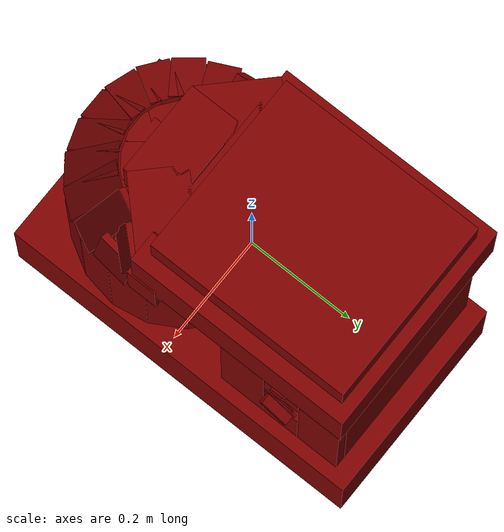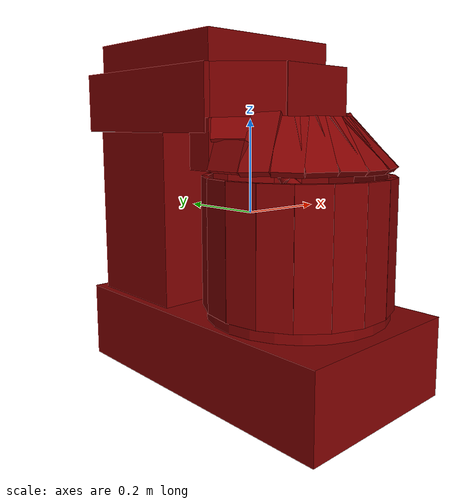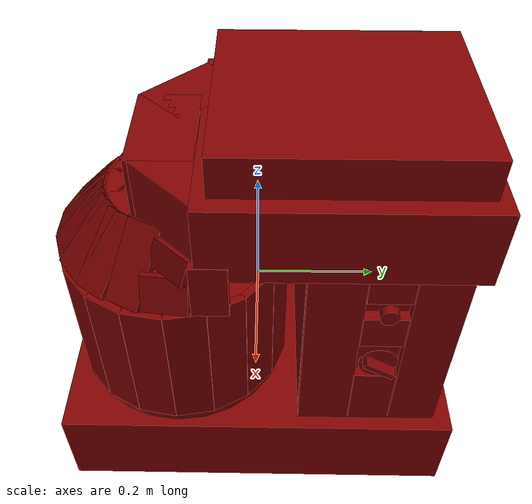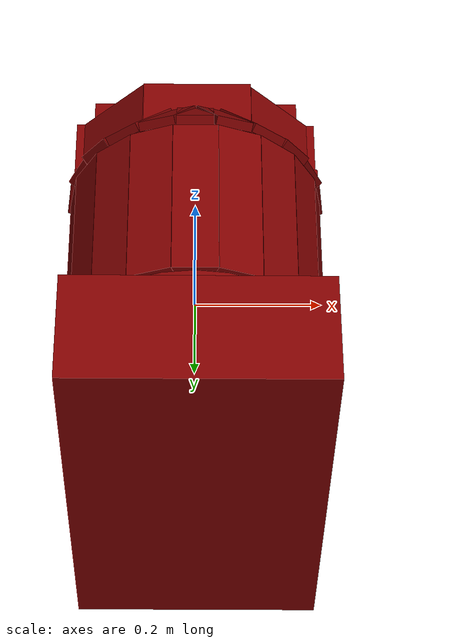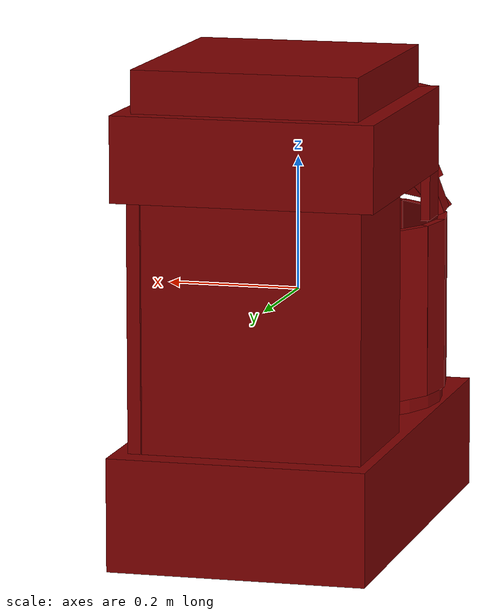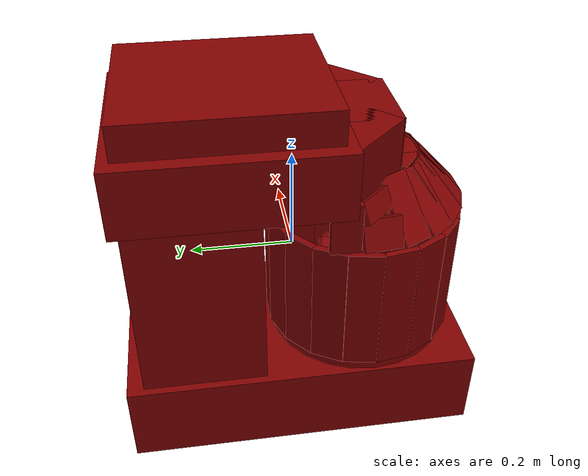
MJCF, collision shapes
<?xml version='1.0' encoding='UTF-8'?>
<mujoco model="model">
  <compiler angle="radian"/>
  <asset>
    <mesh file="visuals/Blender001.obj" name="Blender001_vis"/>
    <mesh file="visuals/Body001.obj" name="Body001_vis"/>
    <mesh file="visuals/Button001.obj" name="Button001_vis"/>
    <mesh file="visuals/Container001.obj" name="Container001_vis"/>
    <mesh file="visuals/Knob001.obj" name="Knob001_vis"/>
    <mesh file="visuals/Lid001.obj" name="Lid001_vis"/>
    <texture file="visuals/T_BC001.png" name="Body001_material" type="2d"/>
    <material name="Body001_material" rgba="1 1 1 1.0" texture="Body001_material" shininess="0.4472135901451111" specular="0.6"/>
    <texture file="visuals/T_BC001.png" name="Button001_material" type="2d"/>
    <material name="Button001_material" rgba="1 1 1 1.0" texture="Button001_material" shininess="0.4472135901451111" specular="0.3103448502657381"/>
    <texture file="visuals/T_BC001.png" name="Container001_material" type="2d"/>
    <material name="Container001_material" rgba="1 1 1 1.0" texture="Container001_material" shininess="0.4472135901451111" specular="0.8"/>
    <texture file="visuals/T_BC001.png" name="Knob001_material" type="2d"/>
    <material name="Knob001_material" rgba="1 1 1 1.0" texture="Knob001_material" shininess="0.4472135901451111" specular="0.3103448502657381"/>
    <texture file="visuals/T_BC001.png" name="Lid001_material" type="2d"/>
    <material name="Lid001_material" rgba="1 1 1 1.0" texture="Lid001_material" shininess="0.4472135901451111" specular="0.6"/>
    <texture file="visuals/T_BC001.png" name="Blender001_material" type="2d"/>
    <material name="Blender001_material" rgba="1 1 1 1.0" texture="Blender001_material" shininess="0.4472135901451111" specular="0.8"/>
  </asset>
  <default>
    <default class="visual">
      <geom conaffinity="0" contype="0" group="1" type="mesh"/>
    </default>
    <default class="collision">
      <geom group="0" rgba="0.5 0 0 0.5"/>
    </default>
    <default class="spawn">
      <geom group="0" rgba="1 1 1 0.5" contype="0" conaffinity="0"/>
      <site group="0" rgba="1 1 1 0.5"/>
    </default>
    <default class="region">
      <geom group="1" conaffinity="0" contype="0" rgba="0 1 0 0"/>
    </default>
  </default>
  <worldbody>
    <body>
      <body name="object">
        <geom mesh="Body001_vis" type="mesh" solimp="0.998 0.998 0.001" solref="0.001 1" density="100" friction="0.95 0.3 0.1" class="visual" material="Body001_material"/>
        <geom class="collision" type="box" pos="0.004799 0.000000 -0.281110" size="0.19251543283462524 0.34842848777770996 0.08424658328294754" quat="1.0 0.0 0.0 0.0"/>
        <geom class="collision" type="box" pos="-0.010589 0.194755 -0.011221" size="0.16297440230846405 0.12090107053518295 0.1839895248413086" quat="1.0 0.0 0.0 0.0"/>
        <geom class="collision" type="box" pos="0.163872 0.275314 -0.011221" size="0.009846153669059277 0.04034204035997391 0.1839895248413086" quat="1.0 0.0 0.0 0.0"/>
        <geom class="collision" type="box" pos="0.163872 0.118261 -0.011221" size="0.009846153669059277 0.04394160956144333 0.1839895248413086" quat="1.0 0.0 0.0 0.0"/>
        <geom class="collision" type="box" pos="0.163872 0.198493 -0.132679" size="0.009846153669059277 0.03491780906915665 0.06253164261579514" quat="1.0 0.0 0.0 0.0"/>
        <geom class="collision" type="box" pos="0.163872 0.198493 0.140944" size="0.009846153669059277 0.03491780906915665 0.03183937817811966" quat="1.0 0.0 0.0 0.0"/>
        <geom class="collision" type="box" pos="0.163872 0.198493 0.041338" size="0.009846153669059277 0.03491780906915665 0.03183937817811966" quat="1.0 0.0 0.0 0.0"/>
        <body name="Button001">
          <joint axis="-1.0 0.0 0.0" pos="0.178750 0.199048 0.090496" limited="true" name="Button001_joint" range="0.0 0.01" type="slide" damping="1" frictionloss="1" armature=".01" stiffness="0.05"/>
          <geom mesh="Button001_vis" type="mesh" solimp="0.998 0.998 0.001" solref="0.001 1" density="100" friction="0.95 0.3 0.1" class="visual" material="Button001_material"/>
          <geom class="collision" type="cylinder" pos="0.178808 0.199048 0.090520" size="0.014642302878201008 0.007393617648631334" quat="0.7071068286895752 -0.0 0.7071067690849304 0.0"/>
        </body>
        <body name="Container001">
          <joint axis="0.0 0.0 1.0" pos="-0.000101 -0.140191 -0.052839" limited="true" name="Container001_joint" range="0.0 0.1" type="slide" damping="1" frictionloss="1" armature=".01" stiffness="0.05"/>
          <geom mesh="Container001_vis" type="mesh" solimp="0.998 0.998 0.001" solref="0.001 1" density="100" friction="0.95 0.3 0.1" class="visual" material="Container001_material"/>
          <geom class="collision" type="cylinder" pos="-0.000101 -0.140191 -0.181641" size="0.18583239614963531 0.010407824069261551" quat="1.0 0.0 0.0 0.0"/>
          <geom class="collision" type="box" pos="0.181344 -0.172169 -0.039944" size="0.0061767445877194405 0.033245980739593506 0.12993557751178741" quat="0.9961947202682495 0.0 -0.0 -0.08715573698282242"/>
          <geom class="collision" type="box" pos="-0.181360 -0.108214 -0.039944" size="0.0061767445877194405 0.033245980739593506 0.12993557751178741" quat="0.9961947202682495 0.0 -0.0 -0.08715573698282242"/>
          <geom class="collision" type="box" pos="-0.000008 -0.324341 -0.039944" size="0.033245980739593506 0.006176746916025877 0.12993541359901428" quat="1.0 0.0 0.0 0.0"/>
          <geom class="collision" type="box" pos="-0.000008 0.043959 -0.039944" size="0.033245980739593506 0.006176746916025877 0.12993548810482025" quat="1.0 0.0 0.0 0.0"/>
          <geom class="collision" type="box" pos="-0.062991 0.032853 -0.039944" size="0.0061767445877194405 0.033245980739593506 0.12993557751178741" quat="0.8191520571708679 0.0 -0.0 -0.5735764503479004"/>
          <geom class="collision" type="box" pos="0.062975 -0.313236 -0.039944" size="0.0061767445877194405 0.033245980739593506 0.12993557751178741" quat="0.8191520571708679 0.0 -0.0 -0.5735764503479004"/>
          <geom class="collision" type="box" pos="0.118361 -0.281258 -0.039944" size="0.0061767445877194405 0.033245980739593506 0.12993557751178741" quat="0.9063077569007874 0.0 -0.0 -0.4226183593273163"/>
          <geom class="collision" type="box" pos="-0.118377 0.000876 -0.039944" size="0.0061767445877194405 0.033245980739593506 0.12993557751178741" quat="0.9063077569007874 0.0 -0.0 -0.4226183593273163"/>
          <geom class="collision" type="box" pos="-0.159487 -0.048116 -0.039944" size="0.0061767445877194405 0.033245980739593506 0.12993557751178741" quat="0.9659258127212524 0.0 -0.0 -0.2588190734386444"/>
          <geom class="collision" type="box" pos="0.159470 -0.232266 -0.039944" size="0.0061767445877194405 0.033245980739593506 0.12993557751178741" quat="0.9659258127212524 0.0 -0.0 -0.2588190734386444"/>
          <geom class="collision" type="box" pos="0.062975 0.032853 -0.039944" size="0.0061767445877194405 0.033245980739593506 0.12993557751178741" quat="0.8191519975662231 0.0 0.0 0.5735765099525452"/>
          <geom class="collision" type="box" pos="-0.062991 -0.313236 -0.039944" size="0.0061767445877194405 0.033245980739593506 0.12993557751178741" quat="0.8191519975662231 0.0 0.0 0.5735765099525452"/>
          <geom class="collision" type="box" pos="-0.118377 -0.281258 -0.039944" size="0.0061767445877194405 0.033245980739593506 0.12993557751178741" quat="0.9063078165054321 0.0 0.0 0.42261821031570435"/>
          <geom class="collision" type="box" pos="0.118361 0.000876 -0.039944" size="0.0061767445877194405 0.033245980739593506 0.12993557751178741" quat="0.9063078165054321 0.0 0.0 0.42261821031570435"/>
          <geom class="collision" type="box" pos="0.159471 -0.048116 -0.039944" size="0.0061767445877194405 0.033245980739593506 0.12993557751178741" quat="0.9659258127212524 0.0 0.0 0.2588190734386444"/>
          <geom class="collision" type="box" pos="-0.159487 -0.232266 -0.039944" size="0.0061767445877194405 0.033245980739593506 0.12993557751178741" quat="0.9659258127212524 0.0 0.0 0.2588190734386444"/>
          <geom class="collision" type="box" pos="-0.181360 -0.172169 -0.039944" size="0.0061767445877194405 0.033245984464883804 0.12993557751178741" quat="0.9961947202682495 0.0 0.0 0.08715561032295227"/>
          <geom class="collision" type="box" pos="0.181344 -0.108214 -0.039944" size="0.0061767445877194405 0.033245984464883804 0.12993557751178741" quat="0.9961947202682495 0.0 0.0 0.08715561032295227"/>
        </body>
        <body name="Knob001">
          <joint axis="-1.0 0.0 0.0" pos="0.187252 0.197473 -0.031054" limited="true" name="Knob001_joint" range="0.0 4.886921905584122" type="hinge" damping="0.05" armature="0.001"/>
          <geom mesh="Knob001_vis" type="mesh" solimp="0.998 0.998 0.001" solref="0.001 1" density="100" friction="0.95 0.3 0.1" class="visual" material="Knob001_material"/>
          <geom class="collision" type="cylinder" pos="0.174208 0.197845 -0.031054" size="0.03231373801827431 0.0012079408625140786" quat="0.7071068286895752 -0.0 0.7071067690849304 0.0"/>
          <geom class="collision" type="box" pos="0.184984 0.197845 -0.031054" size="0.009411806240677834 0.028818931430578232 0.005275980569422245" quat="0.9626153111457825 -0.27087217569351196 -6.014570523704953e-17 6.542199994625394e-25"/>
        </body>
        <body name="Lid001">
          <joint axis="-1.0 0.0 0.0" pos="0.000038 0.318746 0.174231" limited="true" name="Lid001_joint" range="0.0 1.5707963267948966" type="hinge" damping="1" frictionloss="1" armature=".01" stiffness="0.05"/>
          <geom mesh="Lid001_vis" type="mesh" solimp="0.998 0.998 0.001" solref="0.001 1" density="100" friction="0.95 0.3 0.1" class="visual" material="Lid001_material"/>
          <geom class="collision" type="box" pos="-0.000450 0.122571 0.237273" size="0.19431881606578827 0.2085888683795929 0.06351733207702637" quat="1.0 0.0 0.0 0.0"/>
          <geom class="collision" type="box" pos="0.002273 -0.137029 0.237273" size="0.08539991080760956 0.04922417923808098 0.06351733207702637" quat="1.0 0.0 0.0 0.0"/>
          <geom class="collision" type="box" pos="0.102061 -0.095968 0.237273" size="0.06879246234893799 0.04922395572066307 0.06351733207702637" quat="0.9238795042037964 0.0 0.0 0.3826834559440613"/>
          <geom class="collision" type="box" pos="-0.098259 -0.100314 0.237273" size="0.06904993206262589 0.04922395944595337 0.06351733207702637" quat="0.9238795042037964 0.0 -0.0 -0.3826834559440613"/>
          <geom class="collision" type="box" pos="-0.000054 0.122571 0.333284" size="0.16760961711406708 0.18835023045539856 0.03170707821846008" quat="1.0 0.0 0.0 0.0"/>
          <geom class="collision" type="box" pos="0.189411 -0.066592 0.152524" size="0.007024102378636599 0.027991430833935738 0.04819823428988457" quat="1.0 0.0 0.0 0.0"/>
          <geom class="collision" type="box" pos="0.179691 -0.132774 0.131982" size="0.007024114485830069 0.03573315963149071 0.02964690513908863" quat="0.9827542901039124 -0.005831500049680471 -0.1749138981103897 -0.059708282351493835"/>
          <geom class="collision" type="box" pos="-0.000671 -0.279305 0.151291" size="0.007024114485830069 0.027991430833935738 0.06515268236398697" quat="0.6562364101409912 -0.26335108280181885 -0.2633510231971741 -0.6562364101409912"/>
          <geom class="collision" type="box" pos="0.041949 -0.273040 0.152189" size="0.007024114485830069 0.027991430833935738 0.06515268236398697" quat="0.752773106098175 -0.20632094144821167 -0.30972301959991455 -0.5429880023002625"/>
          <geom class="collision" type="box" pos="0.083779 -0.253074 0.151999" size="0.007024114951491356 0.027991430833935738 0.06515268236398697" quat="0.8307384252548218 -0.17888695001602173 -0.32604533433914185 -0.4142071008682251"/>
          <geom class="collision" type="box" pos="0.115290 -0.223920 0.151627" size="0.007024114485830069 0.02799142710864544 0.06515268236398697" quat="0.8761871457099915 -0.10927364230155945 -0.35546261072158813 -0.3065970242023468"/>
          <geom class="collision" type="box" pos="0.143247 -0.179014 0.155723" size="0.007024114951491356 0.027991432696580887 0.06515268236398697" quat="0.9231134653091431 -0.09359268844127655 -0.3090006113052368 -0.2088554948568344"/>
          <geom class="collision" type="box" pos="0.162096 -0.121468 0.180093" size="0.007024114485830069 0.03573315590620041 0.0211629718542099" quat="0.911022961139679 -0.08539623022079468 -0.19718386232852936 -0.3519419729709625"/>
          <geom class="collision" type="box" pos="-0.162200 -0.121468 0.180093" size="0.007024114485830069 0.03573315963149071 0.0211629718542099" quat="0.911022961139679 -0.08539625257253647 0.19718389213085175 0.3519419729709625"/>
          <geom class="collision" type="box" pos="-0.083883 -0.253074 0.151999" size="0.007024114951491356 0.027991430833935738 0.06515268236398697" quat="0.8307384252548218 -0.17888695001602173 0.32604533433914185 0.4142071008682251"/>
          <geom class="collision" type="box" pos="-0.042053 -0.273040 0.152189" size="0.007024114951491356 0.027991430833935738 0.06515267491340637" quat="0.752773106098175 -0.20632094144821167 0.3097230792045593 0.5429880023002625"/>
          <geom class="collision" type="box" pos="-0.115393 -0.223920 0.151627" size="0.007024114485830069 0.02799142710864544 0.06515268236398697" quat="0.8761871457099915 -0.10927364975214005 0.35546255111694336 0.3065970838069916"/>
          <geom class="collision" type="box" pos="-0.143351 -0.179014 0.155723" size="0.007024114951491356 0.027991432696580887 0.06515267491340637" quat="0.9231135249137878 -0.0935925841331482 0.30900055170059204 0.2088552713394165"/>
          <geom class="collision" type="box" pos="-0.179794 -0.132774 0.131982" size="0.007024114485830069 0.03573315963149071 0.02964690513908863" quat="0.9827542901039124 -0.005831499584019184 0.1749138981103897 0.059708282351493835"/>
          <geom class="collision" type="box" pos="-0.185228 -0.066592 0.152524" size="0.007024104706943035 0.027991430833935738 0.04819826781749725" quat="1.0 0.0 0.0 0.0"/>
          <geom class="collision" type="box" pos="0.002273 -0.212335 0.196512" size="0.028944510966539383 0.023552678525447845 0.004796868190169334" quat="1.0 0.0 0.0 0.0"/>
          <geom class="collision" type="box" pos="-0.044352 -0.202184 0.196512" size="0.01881283149123192 0.030994737520813942 0.004796868190169334" quat="0.8969359993934631 0.0 0.0 0.44216036796569824"/>
          <geom class="collision" type="box" pos="0.050770 -0.200698 0.196512" size="0.01881283149123192 0.030994733795523643 0.004796868190169334" quat="0.8969359993934631 0.0 -0.0 -0.44216039776802063"/>
          <body name="Blender001">
            <joint axis="0.0 0.0 1.0" pos="0.000022 -0.126195 0.174892" limited="false" name="Blender001_joint" range="0 360" type="hinge" damping="1" frictionloss="1" armature=".01" stiffness="0.05"/>
            <geom mesh="Blender001_vis" type="mesh" solimp="0.998 0.998 0.001" solref="0.001 1" density="100" friction="0.95 0.3 0.1" class="visual" material="Blender001_material"/>
            <geom class="collision" type="cylinder" pos="0.000706 -0.126259 0.164391" size="0.0488768070936203 0.009077758528292179" quat="1.0 0.0 0.0 0.0"/>
            <geom class="collision" type="cylinder" pos="-0.029548 -0.150075 0.115700" size="0.008038324303925037 0.03987272456288338" quat="1.0 0.0 0.0 0.0"/>
            <geom class="collision" type="cylinder" pos="0.003375 -0.112040 0.135333" size="0.014936371706426144 0.03110305406153202" quat="0.9393659830093384 0.1000475212931633 0.3272119462490082 -0.02268061228096485"/>
            <geom class="collision" type="cylinder" pos="-0.026133 -0.123360 0.094369" size="0.014777264557778835 0.030771734192967415" quat="0.7805690765380859 -0.282722145318985 0.31547272205352783 0.45962709188461304"/>
            <geom class="collision" type="cylinder" pos="-0.022151 -0.161278 0.060764" size="0.014777264557778835 0.030771734192967415" quat="0.6745424866676331 -0.43157464265823364 -0.039401449263095856 0.5976481437683105"/>
            <geom class="collision" type="cylinder" pos="0.016839 -0.175993 0.028933" size="0.014777264557778835 0.030771734192967415" quat="0.19706715643405914 -0.4277191758155823 -0.23005877435207367 0.851641833782196"/>
            <geom class="collision" type="cylinder" pos="0.053938 -0.145758 0.001717" size="0.014777264557778835 0.030771736055612564" quat="0.13328370451927185 0.16134995222091675 0.4719087481498718 -0.8564483523368835"/>
            <geom class="collision" type="cylinder" pos="0.050367 -0.099720 -0.024457" size="0.012846244499087334 0.026750639081001282" quat="0.2754901349544525 -0.10154769569635391 0.5268837809562683 -0.7976131439208984"/>
            <geom class="collision" type="cylinder" pos="0.017975 -0.071595 -0.042901" size="0.012846244499087334 0.026750635355710983" quat="0.5539237260818481 -0.3012176752090454 0.4401063919067383 -0.6393299698829651"/>
            <geom class="collision" type="cylinder" pos="-0.031179 -0.074346 -0.067203" size="0.010498244315385818 0.031561873853206635" quat="0.6597776412963867 -0.4777856171131134 0.25537940859794617 -0.5207645297050476"/>
            <geom class="collision" type="cylinder" pos="-0.065455 -0.107501 -0.087904" size="0.010498244315385818 0.025174468755722046" quat="0.8097105622291565 -0.5601747632026672 0.12818746268749237 -0.11891600489616394"/>
            <geom class="collision" type="cylinder" pos="-0.074068 -0.146701 -0.102740" size="0.007984554395079613 0.019868724048137665" quat="0.8177357316017151 -0.5725573301315308 -0.058064937591552734 0.010719173587858677"/>
          </body>
        </body>
        <geom class="region" name="reg_main" type="box" pos="1.9000000000005124e-05 0.0 0.0" size="0.18810300000000002 0.347535 0.364429"/>
      </body>
    </body>
  </worldbody>
  <actuator>
    <motor name="Button001_joint_actuator" joint="Button001_joint" gear="0.5"/>
    <motor name="Container001_joint_actuator" joint="Container001_joint" gear="10"/>
    <motor name="Knob001_joint_actuator" joint="Knob001_joint" gear="10"/>
    <motor name="Lid001_joint_actuator" joint="Lid001_joint" gear="10"/>
    <motor name="Blender001_joint_actuator" joint="Blender001_joint" gear="10"/>
  </actuator>
</mujoco>
